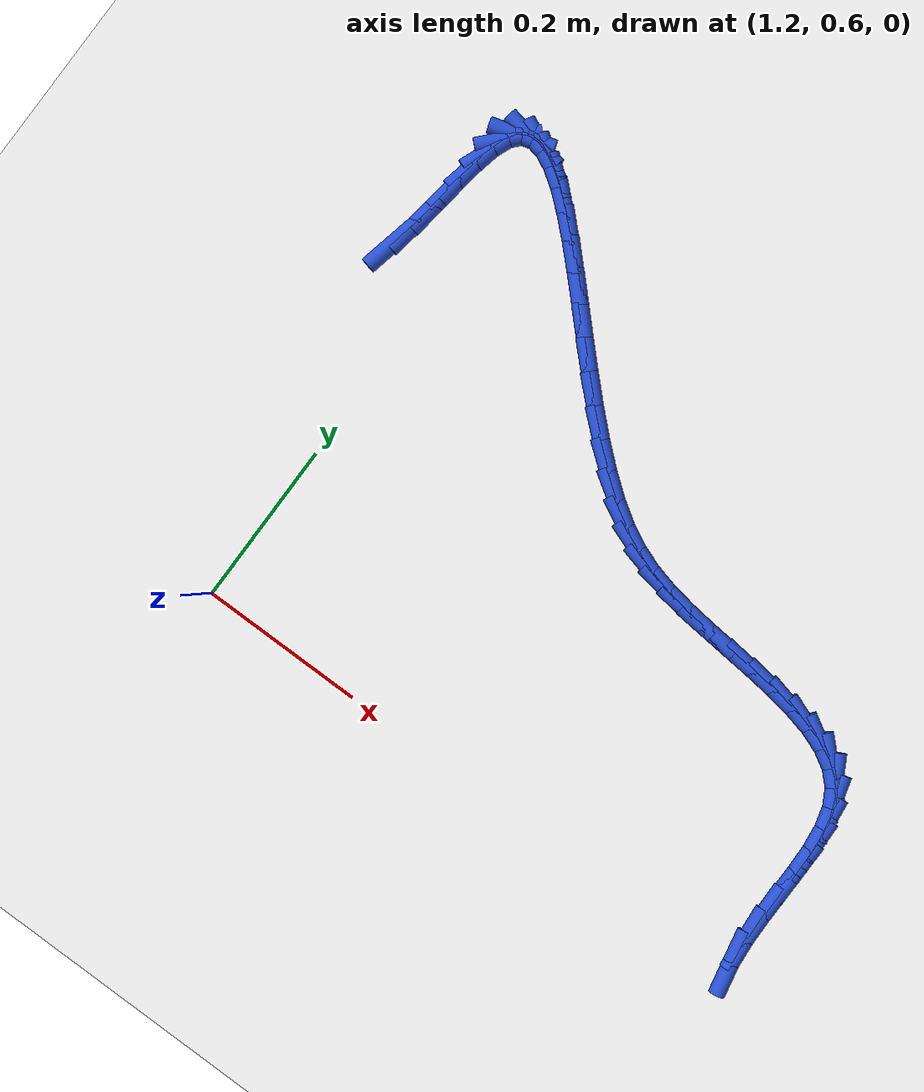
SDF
<sdf version="1.6">
 <world name="default">
  <model name="ground_plane">
   <static>1</static>
   <link name="link">
    <collision name="collision">
     <geometry><plane><normal>0 0 1</normal><size>100 100</size></plane></geometry>
     <surface><friction><ode><mu>100</mu><mu2>50</mu2></ode></friction></surface>
    </collision>
    <visual name="visual">
     <cast_shadows>0</cast_shadows>
     <geometry><plane><normal>0 0 1</normal><size>100 100</size></plane></geometry>
     <material>
      <script><uri>file://media/materials/scripts/gazebo.material</uri><name>Gazebo/WhiteGlow</name></script>
     </material>
    </visual>
   </link>
  </model>
  <model name="line">
   <link name="link_62">
    <pose>1.1278860022115038 1.0473334374180432 0.01 0 1.57 1.3549867051318958</pose>
    <collision name="collision">
     <geometry><cylinder><radius>0.01</radius><length>0.08</length></cylinder></geometry>
    </collision>
    <visual name="visual">
     <material>
      <script><name>Gazebo/Blue</name><uri>file://media/materials/scripts/gazebo.material</uri></script>
     </material>
     <geometry><cylinder><radius>0.01</radius><length>0.08</length></cylinder></geometry>
    </visual>
   </link>
   <link name="link_63">
    <pose>1.1347383431339937 1.0785907523713734 0.01 0 1.57 1.4172615293790454</pose>
    <collision name="collision">
     <geometry><cylinder><radius>0.01</radius><length>0.08</length></cylinder></geometry>
    </collision>
    <visual name="visual">
     <material>
      <script><name>Gazebo/Blue</name><uri>file://media/materials/scripts/gazebo.material</uri></script>
     </material>
     <geometry><cylinder><radius>0.01</radius><length>0.08</length></cylinder></geometry>
    </visual>
   </link>
   <link name="link_64">
    <pose>1.1398502789547666 1.1116236860384827 0.01 0 1.57 1.439359803904405</pose>
    <collision name="collision">
     <geometry><cylinder><radius>0.01</radius><length>0.08</length></cylinder></geometry>
    </collision>
    <visual name="visual">
     <material>
      <script><name>Gazebo/Blue</name><uri>file://media/materials/scripts/gazebo.material</uri></script>
     </material>
     <geometry><cylinder><radius>0.01</radius><length>0.08</length></cylinder></geometry>
    </visual>
   </link>
   <link name="link_65">
    <pose>1.1441832336129072 1.1443997696870725 0.01 0 1.57 1.4237552142727998</pose>
    <collision name="collision">
     <geometry><cylinder><radius>0.01</radius><length>0.08</length></cylinder></geometry>
    </collision>
    <visual name="visual">
     <material>
      <script><name>Gazebo/Blue</name><uri>file://media/materials/scripts/gazebo.material</uri></script>
     </material>
     <geometry><cylinder><radius>0.01</radius><length>0.08</length></cylinder></geometry>
    </visual>
   </link>
   <link name="link_66">
    <pose>1.1486986310474978 1.1748865345848427 0.01 0 1.57 1.3577859860953847</pose>
    <collision name="collision">
     <geometry><cylinder><radius>0.01</radius><length>0.08</length></cylinder></geometry>
    </collision>
    <visual name="visual">
     <material>
      <script><name>Gazebo/Blue</name><uri>file://media/materials/scripts/gazebo.material</uri></script>
     </material>
     <geometry><cylinder><radius>0.01</radius><length>0.08</length></cylinder></geometry>
    </visual>
   </link>
   <link name="link_67">
    <pose>1.1543578951976232 1.2010515119994944 0.01 0 1.57 1.1972600711070043</pose>
    <collision name="collision">
     <geometry><cylinder><radius>0.01</radius><length>0.08</length></cylinder></geometry>
    </collision>
    <visual name="visual">
     <material>
      <script><name>Gazebo/Blue</name><uri>file://media/materials/scripts/gazebo.material</uri></script>
     </material>
     <geometry><cylinder><radius>0.01</radius><length>0.08</length></cylinder></geometry>
    </visual>
   </link>
   <link name="link_68">
    <pose>1.1621224500023657 1.2208622331987269 0.01 0 1.57 0.8371831494642176</pose>
    <collision name="collision">
     <geometry><cylinder><radius>0.01</radius><length>0.08</length></cylinder></geometry>
    </collision>
    <visual name="visual">
     <material>
      <script><name>Gazebo/Blue</name><uri>file://media/materials/scripts/gazebo.material</uri></script>
     </material>
     <geometry><cylinder><radius>0.01</radius><length>0.08</length></cylinder></geometry>
    </visual>
   </link>
   <link name="link_69">
    <pose>1.1727827047393322 1.2326879665154435 0.01 0 1.57 0.2943817741588546</pose>
    <collision name="collision">
     <geometry><cylinder><radius>0.01</radius><length>0.08</length></cylinder></geometry>
    </collision>
    <visual name="visual">
     <material>
      <script><name>Gazebo/Blue</name><uri>file://media/materials/scripts/gazebo.material</uri></script>
     </material>
     <geometry><cylinder><radius>0.01</radius><length>0.08</length></cylinder></geometry>
    </visual>
   </link>
   <link name="link_70">
    <pose>1.1863223531366993 1.2367930665545797 0.01 0 1.57 -0.17108497562284303</pose>
    <collision name="collision">
     <geometry><cylinder><radius>0.01</radius><length>0.08</length></cylinder></geometry>
    </collision>
    <visual name="visual">
     <material>
      <script><name>Gazebo/Blue</name><uri>file://media/materials/scripts/gazebo.material</uri></script>
     </material>
     <geometry><cylinder><radius>0.01</radius><length>0.08</length></cylinder></geometry>
    </visual>
   </link>
   <link name="link_71">
    <pose>1.2024874390123328 1.2340001603913302 0.01 0 1.57 -0.44623321305417185</pose>
    <collision name="collision">
     <geometry><cylinder><radius>0.01</radius><length>0.08</length></cylinder></geometry>
    </collision>
    <visual name="visual">
     <material>
      <script><name>Gazebo/Blue</name><uri>file://media/materials/scripts/gazebo.material</uri></script>
     </material>
     <geometry><cylinder><radius>0.01</radius><length>0.08</length></cylinder></geometry>
    </visual>
   </link>
   <link name="link_72">
    <pose>1.2210239727013343 1.2251319537565342 0.01 0 1.57 -0.5996914129077757</pose>
    <collision name="collision">
     <geometry><cylinder><radius>0.01</radius><length>0.08</length></cylinder></geometry>
    </collision>
    <visual name="visual">
     <material>
      <script><name>Gazebo/Blue</name><uri>file://media/materials/scripts/gazebo.material</uri></script>
     </material>
     <geometry><cylinder><radius>0.01</radius><length>0.08</length></cylinder></geometry>
    </visual>
   </link>
   <link name="link_73">
    <pose>1.2416779645388045 1.2110111523810276 0.01 0 1.57 -0.6891069420991708</pose>
    <collision name="collision">
     <geometry><cylinder><radius>0.01</radius><length>0.08</length></cylinder></geometry>
    </collision>
    <visual name="visual">
     <material>
      <script><name>Gazebo/Blue</name><uri>file://media/materials/scripts/gazebo.material</uri></script>
     </material>
     <geometry><cylinder><radius>0.01</radius><length>0.08</length></cylinder></geometry>
    </visual>
   </link>
   <link name="link_74">
    <pose>1.2641954248598442 1.1924604619956478 0.01 0 1.57 -0.7428814340850759</pose>
    <collision name="collision">
     <geometry><cylinder><radius>0.01</radius><length>0.08</length></cylinder></geometry>
    </collision>
    <visual name="visual">
     <material>
      <script><name>Gazebo/Blue</name><uri>file://media/materials/scripts/gazebo.material</uri></script>
     </material>
     <geometry><cylinder><radius>0.01</radius><length>0.08</length></cylinder></geometry>
    </visual>
   </link>
   <link name="link_75">
    <pose>1.2883223639995558 1.1703025883312317 0.01 0 1.57 -0.7746880237443464</pose>
    <collision name="collision">
     <geometry><cylinder><radius>0.01</radius><length>0.08</length></cylinder></geometry>
    </collision>
    <visual name="visual">
     <material>
      <script><name>Gazebo/Blue</name><uri>file://media/materials/scripts/gazebo.material</uri></script>
     </material>
     <geometry><cylinder><radius>0.01</radius><length>0.08</length></cylinder></geometry>
    </visual>
   </link>
   <link name="link_76">
    <pose>1.313804792293039 1.1453602371186173 0.01 0 1.57 -0.7913843868254766</pose>
    <collision name="collision">
     <geometry><cylinder><radius>0.01</radius><length>0.08</length></cylinder></geometry>
    </collision>
    <visual name="visual">
     <material>
      <script><name>Gazebo/Blue</name><uri>file://media/materials/scripts/gazebo.material</uri></script>
     </material>
     <geometry><cylinder><radius>0.01</radius><length>0.08</length></cylinder></geometry>
    </visual>
   </link>
   <link name="link_77">
    <pose>1.340388720075395 1.1184561140886413 0.01 0 1.57 -0.7964253077011404</pose>
    <collision name="collision">
     <geometry><cylinder><radius>0.01</radius><length>0.08</length></cylinder></geometry>
    </collision>
    <visual name="visual">
     <material>
      <script><name>Gazebo/Blue</name><uri>file://media/materials/scripts/gazebo.material</uri></script>
     </material>
     <geometry><cylinder><radius>0.01</radius><length>0.08</length></cylinder></geometry>
    </visual>
   </link>
   <link name="link_78">
    <pose>1.3678201576817262 1.090412924972141 0.01 0 1.57 -0.7913322008815145</pose>
    <collision name="collision">
     <geometry><cylinder><radius>0.01</radius><length>0.08</length></cylinder></geometry>
    </collision>
    <visual name="visual">
     <material>
      <script><name>Gazebo/Blue</name><uri>file://media/materials/scripts/gazebo.material</uri></script>
     </material>
     <geometry><cylinder><radius>0.01</radius><length>0.08</length></cylinder></geometry>
    </visual>
   </link>
   <link name="link_79">
    <pose>1.3958451154471319 1.062053375499954 0.01 0 1.57 -0.7763036942892507</pose>
    <collision name="collision">
     <geometry><cylinder><radius>0.01</radius><length>0.08</length></cylinder></geometry>
    </collision>
    <visual name="visual">
     <material>
      <script><name>Gazebo/Blue</name><uri>file://media/materials/scripts/gazebo.material</uri></script>
     </material>
     <geometry><cylinder><radius>0.01</radius><length>0.08</length></cylinder></geometry>
    </visual>
   </link>
   <link name="link_80">
    <pose>1.4242096037067142 1.0342001714029174 0.01 0 1.57 -0.7503801103815239</pose>
    <collision name="collision">
     <geometry><cylinder><radius>0.01</radius><length>0.08</length></cylinder></geometry>
    </collision>
    <visual name="visual">
     <material>
      <script><name>Gazebo/Blue</name><uri>file://media/materials/scripts/gazebo.material</uri></script>
     </material>
     <geometry><cylinder><radius>0.01</radius><length>0.08</length></cylinder></geometry>
    </visual>
   </link>
   <link name="link_81">
    <pose>1.4526596327955739 1.007676018411868 0.01 0 1.57 -0.7112912195267995</pose>
    <collision name="collision">
     <geometry><cylinder><radius>0.01</radius><length>0.08</length></cylinder></geometry>
    </collision>
    <visual name="visual">
     <material>
      <script><name>Gazebo/Blue</name><uri>file://media/materials/scripts/gazebo.material</uri></script>
     </material>
     <geometry><cylinder><radius>0.01</radius><length>0.08</length></cylinder></geometry>
    </visual>
   </link>
   <link name="link_82">
    <pose>1.480941213048812 0.9833036222576435 0.01 0 1.57 -0.6549696310134371</pose>
    <collision name="collision">
     <geometry><cylinder><radius>0.01</radius><length>0.08</length></cylinder></geometry>
    </collision>
    <visual name="visual">
     <material>
      <script><name>Gazebo/Blue</name><uri>file://media/materials/scripts/gazebo.material</uri></script>
     </material>
     <geometry><cylinder><radius>0.01</radius><length>0.08</length></cylinder></geometry>
    </visual>
   </link>
   <link name="link_83">
    <pose>1.5088003548015303 0.9619056886710806 0.01 0 1.57 -0.5746218024719991</pose>
    <collision name="collision">
     <geometry><cylinder><radius>0.01</radius><length>0.08</length></cylinder></geometry>
    </collision>
    <visual name="visual">
     <material>
      <script><name>Gazebo/Blue</name><uri>file://media/materials/scripts/gazebo.material</uri></script>
     </material>
     <geometry><cylinder><radius>0.01</radius><length>0.08</length></cylinder></geometry>
    </visual>
   </link>
   <link name="link_84">
    <pose>1.5359835761795946 0.9443043190619034 0.01 0 1.57 -0.4661101643893805</pose>
    <collision name="collision">
     <geometry><cylinder><radius>0.01</radius><length>0.08</length></cylinder></geometry>
    </collision>
    <visual name="visual">
     <material>
      <script><name>Gazebo/Blue</name><uri>file://media/materials/scripts/gazebo.material</uri></script>
     </material>
     <geometry><cylinder><radius>0.01</radius><length>0.08</length></cylinder></geometry>
    </visual>
   </link>
   <link name="link_85">
    <pose>1.5625650722015731 0.9309316470062329 0.01 0 1.57 -0.3479159275155143</pose>
    <collision name="collision">
     <geometry><cylinder><radius>0.01</radius><length>0.08</length></cylinder></geometry>
    </collision>
    <visual name="visual">
     <material>
      <script><name>Gazebo/Blue</name><uri>file://media/materials/scripts/gazebo.material</uri></script>
     </material>
     <geometry><cylinder><radius>0.01</radius><length>0.08</length></cylinder></geometry>
    </visual>
   </link>
   <link name="link_86">
    <pose>1.58950988318602 0.9211596122751166 0.01 0 1.57 -0.24074084349163496</pose>
    <collision name="collision">
     <geometry><cylinder><radius>0.01</radius><length>0.08</length></cylinder></geometry>
    </collision>
    <visual name="visual">
     <material>
      <script><name>Gazebo/Blue</name><uri>file://media/materials/scripts/gazebo.material</uri></script>
     </material>
     <geometry><cylinder><radius>0.01</radius><length>0.08</length></cylinder></geometry>
    </visual>
   </link>
   <link name="link_87">
    <pose>1.6179329201595498 0.914181698286472 0.01 0 1.57 -0.160513441621076</pose>
    <collision name="collision">
     <geometry><cylinder><radius>0.01</radius><length>0.08</length></cylinder></geometry>
    </collision>
    <visual name="visual">
     <material>
      <script><name>Gazebo/Blue</name><uri>file://media/materials/scripts/gazebo.material</uri></script>
     </material>
     <geometry><cylinder><radius>0.01</radius><length>0.08</length></cylinder></geometry>
    </visual>
   </link>
   <link name="link_88">
    <pose>1.6485639756023636 0.909222336889792 0.01 0 1.57 -0.11143898051182648</pose>
    <collision name="collision">
     <geometry><cylinder><radius>0.01</radius><length>0.08</length></cylinder></geometry>
    </collision>
    <visual name="visual">
     <material>
      <script><name>Gazebo/Blue</name><uri>file://media/materials/scripts/gazebo.material</uri></script>
     </material>
     <geometry><cylinder><radius>0.01</radius><length>0.08</length></cylinder></geometry>
    </visual>
   </link>
   <link name="link_89">
    <pose>1.6808625859068194 0.9056080387203989 0.01 0 1.57 -0.08787144683712474</pose>
    <collision name="collision">
     <geometry><cylinder><radius>0.01</radius><length>0.08</length></cylinder></geometry>
    </collision>
    <visual name="visual">
     <material>
      <script><name>Gazebo/Blue</name><uri>file://media/materials/scripts/gazebo.material</uri></script>
     </material>
     <geometry><cylinder><radius>0.01</radius><length>0.08</length></cylinder></geometry>
    </visual>
   </link>
   <link name="link_90">
    <pose>1.714026764549398 0.902686330602377 0.01 0 1.57 -0.08650597251576622</pose>
    <collision name="collision">
     <geometry><cylinder><radius>0.01</radius><length>0.08</length></cylinder></geometry>
    </collision>
    <visual name="visual">
     <material>
      <script><name>Gazebo/Blue</name><uri>file://media/materials/scripts/gazebo.material</uri></script>
     </material>
     <geometry><cylinder><radius>0.01</radius><length>0.08</length></cylinder></geometry>
    </visual>
   </link>
   <link name="link_91">
    <pose>1.74725452500658 0.8998047393598106 0.01 0 1.57 -0.1071295764972254</pose>
    <collision name="collision">
     <geometry><cylinder><radius>0.01</radius><length>0.08</length></cylinder></geometry>
    </collision>
    <visual name="visual">
     <material>
      <script><name>Gazebo/Blue</name><uri>file://media/materials/scripts/gazebo.material</uri></script>
     </material>
     <geometry><cylinder><radius>0.01</radius><length>0.08</length></cylinder></geometry>
    </visual>
   </link>
   <link name="link_92">
    <pose>1.7797438807548451 0.8963107918167849 0.01 0 1.57 -0.15256719304693075</pose>
    <collision name="collision">
     <geometry><cylinder><radius>0.01</radius><length>0.08</length></cylinder></geometry>
    </collision>
    <visual name="visual">
     <material>
      <script><name>Gazebo/Blue</name><uri>file://media/materials/scripts/gazebo.material</uri></script>
     </material>
     <geometry><cylinder><radius>0.01</radius><length>0.08</length></cylinder></geometry>
    </visual>
   </link>
   <link name="link_93">
    <pose>1.8106928452706748 0.8915520147973839 0.01 0 1.57 -0.22927202789775905</pose>
    <collision name="collision">
     <geometry><cylinder><radius>0.01</radius><length>0.08</length></cylinder></geometry>
    </collision>
    <visual name="visual">
     <material>
      <script><name>Gazebo/Blue</name><uri>file://media/materials/scripts/gazebo.material</uri></script>
     </material>
     <geometry><cylinder><radius>0.01</radius><length>0.08</length></cylinder></geometry>
    </visual>
   </link>
   <link name="link_94">
    <pose>1.8392994320305494 0.8848759351256924 0.01 0 1.57 -0.3483153301249315</pose>
    <collision name="collision">
     <geometry><cylinder><radius>0.01</radius><length>0.08</length></cylinder></geometry>
    </collision>
    <visual name="visual">
     <material>
      <script><name>Gazebo/Blue</name><uri>file://media/materials/scripts/gazebo.material</uri></script>
     </material>
     <geometry><cylinder><radius>0.01</radius><length>0.08</length></cylinder></geometry>
    </visual>
   </link>
   <link name="link_95">
    <pose>1.8647616545109489 0.875630079625795 0.01 0 1.57 -0.5251976341415384</pose>
    <collision name="collision">
     <geometry><cylinder><radius>0.01</radius><length>0.08</length></cylinder></geometry>
    </collision>
    <visual name="visual">
     <material>
      <script><name>Gazebo/Blue</name><uri>file://media/materials/scripts/gazebo.material</uri></script>
     </material>
     <geometry><cylinder><radius>0.01</radius><length>0.08</length></cylinder></geometry>
    </visual>
   </link>
   <link name="link_96">
    <pose>1.8862775261883546 0.863161975121776 0.01 0 1.57 -0.7725718346264494</pose>
    <collision name="collision">
     <geometry><cylinder><radius>0.01</radius><length>0.08</length></cylinder></geometry>
    </collision>
    <visual name="visual">
     <material>
      <script><name>Gazebo/Blue</name><uri>file://media/materials/scripts/gazebo.material</uri></script>
     </material>
     <geometry><cylinder><radius>0.01</radius><length>0.08</length></cylinder></geometry>
    </visual>
   </link>
   <link name="link_97">
    <pose>1.9030450605392464 0.8468191484377199 0.01 0 1.57 -1.0663843297088174</pose>
    <collision name="collision">
     <geometry><cylinder><radius>0.01</radius><length>0.08</length></cylinder></geometry>
    </collision>
    <visual name="visual">
     <material>
      <script><name>Gazebo/Blue</name><uri>file://media/materials/scripts/gazebo.material</uri></script>
     </material>
     <geometry><cylinder><radius>0.01</radius><length>0.08</length></cylinder></geometry>
    </visual>
   </link>
   <link name="link_98">
    <pose>1.914477348674595 0.8261101738931252 0.01 0 1.57 -1.302289564165263</pose>
    <collision name="collision">
     <geometry><cylinder><radius>0.01</radius><length>0.08</length></cylinder></geometry>
    </collision>
    <visual name="visual">
     <material>
      <script><name>Gazebo/Blue</name><uri>file://media/materials/scripts/gazebo.material</uri></script>
     </material>
     <geometry><cylinder><radius>0.01</radius><length>0.08</length></cylinder></geometry>
    </visual>
   </link>
   <link name="link_99">
    <pose>1.9212515739966574 0.8014901626148455 0.01 0 1.57 -1.4540017133546042</pose>
    <collision name="collision">
     <geometry><cylinder><radius>0.01</radius><length>0.08</length></cylinder></geometry>
    </collision>
    <visual name="visual">
     <material>
      <script><name>Gazebo/Blue</name><uri>file://media/materials/scripts/gazebo.material</uri></script>
     </material>
     <geometry><cylinder><radius>0.01</radius><length>0.08</length></cylinder></geometry>
    </visual>
   </link>
   <link name="link_100">
    <pose>1.924505242823375 0.7737589098844994 0.01 0 1.57 -1.5418025049409148</pose>
    <collision name="collision">
     <geometry><cylinder><radius>0.01</radius><length>0.08</length></cylinder></geometry>
    </collision>
    <visual name="visual">
     <material>
      <script><name>Gazebo/Blue</name><uri>file://media/materials/scripts/gazebo.material</uri></script>
     </material>
     <geometry><cylinder><radius>0.01</radius><length>0.08</length></cylinder></geometry>
    </visual>
   </link>
   <link name="link_101">
    <pose>1.9253765252320834 0.7437167079985982 0.01 0 1.57 1.5589775381853215</pose>
    <collision name="collision">
     <geometry><cylinder><radius>0.01</radius><length>0.08</length></cylinder></geometry>
    </collision>
    <visual name="visual">
     <material>
      <script><name>Gazebo/Blue</name><uri>file://media/materials/scripts/gazebo.material</uri></script>
     </material>
     <geometry><cylinder><radius>0.01</radius><length>0.08</length></cylinder></geometry>
    </visual>
   </link>
   <link name="link_102">
    <pose>1.9250035913001156 0.712163849253653 0.01 0 1.57 1.5559514055150188</pose>
    <collision name="collision">
     <geometry><cylinder><radius>0.01</radius><length>0.08</length></cylinder></geometry>
    </collision>
    <visual name="visual">
     <material>
      <script><name>Gazebo/Blue</name><uri>file://media/materials/scripts/gazebo.material</uri></script>
     </material>
     <geometry><cylinder><radius>0.01</radius><length>0.08</length></cylinder></geometry>
    </visual>
   </link>
   <link name="link_103">
    <pose>1.924524611104806 0.6799006259461758 0.01 0 1.57 -1.553605388848458</pose>
    <collision name="collision">
     <geometry><cylinder><radius>0.01</radius><length>0.08</length></cylinder></geometry>
    </collision>
    <visual name="visual">
     <material>
      <script><name>Gazebo/Blue</name><uri>file://media/materials/scripts/gazebo.material</uri></script>
     </material>
     <geometry><cylinder><radius>0.01</radius><length>0.08</length></cylinder></geometry>
    </visual>
   </link>
   <link name="link_104">
    <pose>1.9250777547234892 0.647727330372678 0.01 0 1.57 -1.4839574144540626</pose>
    <collision name="collision">
     <geometry><cylinder><radius>0.01</radius><length>0.08</length></cylinder></geometry>
    </collision>
    <visual name="visual">
     <material>
      <script><name>Gazebo/Blue</name><uri>file://media/materials/scripts/gazebo.material</uri></script>
     </material>
     <geometry><cylinder><radius>0.01</radius><length>0.08</length></cylinder></geometry>
    </visual>
   </link>
   <link name="link_105">
    <pose>1.9278011922334983 0.6164442548296709 0.01 0 1.57 -1.3697192015972464</pose>
    <collision name="collision">
     <geometry><cylinder><radius>0.01</radius><length>0.08</length></cylinder></geometry>
    </collision>
    <visual name="visual">
     <material>
      <script><name>Gazebo/Blue</name><uri>file://media/materials/scripts/gazebo.material</uri></script>
     </material>
     <geometry><cylinder><radius>0.01</radius><length>0.08</length></cylinder></geometry>
    </visual>
   </link>
  </model>
 </world>
</sdf>
